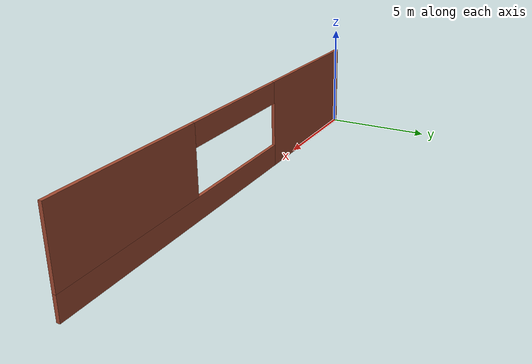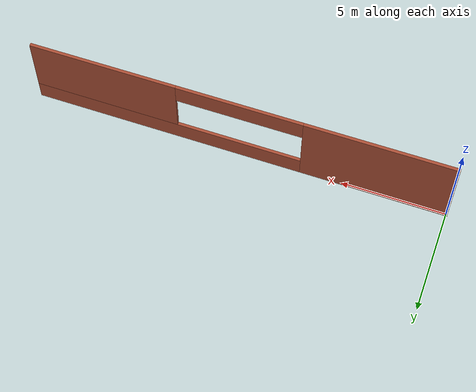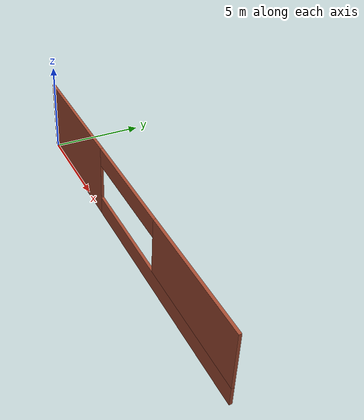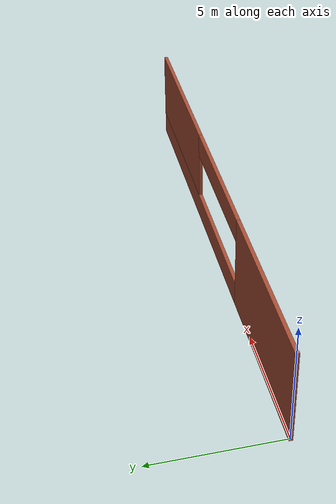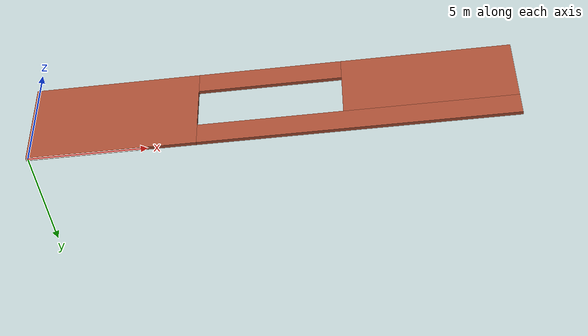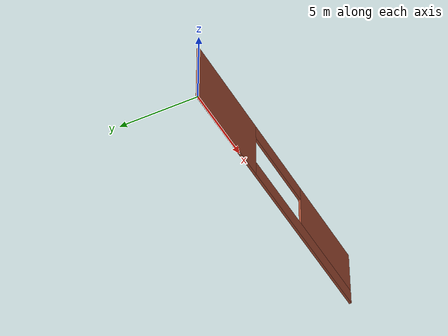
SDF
<?xml version='1.0'?>
<sdf version='1.7'>
  <model name='e_wall_2'>
    <pose>10 0 0 0 -0 0</pose>
    <link name='Wall_8'>
      <pose>-0 0 0 0 -0 0</pose>
      <visual name='Wall_8_Visual_0'>
        <pose>-6.5375 0 2 0 -0 0</pose>
        <geometry>
          <box>
            <size>7.075 0.15 4</size>
          </box>
        </geometry>
        <material>
          <script>
            <uri>model://e_wall_2/scripts</uri>
            <name>Bricks3_8</name>
          </script>
          <ambient>1 1 1 1</ambient>
        </material>
        <meta>
          <layer>0</layer>
        </meta>
      </visual>
      <collision name='Wall_8_Collision_0'>
        <geometry>
          <box>
            <size>7.075 0.15 4</size>
          </box>
        </geometry>
        <pose>-6.5375 0 2 0 -0 0</pose>
      </collision>
      <visual name='Wall_8_Visual_1'>
        <pose>3.5375 0 0.5 0 -0 0</pose>
        <geometry>
          <box>
            <size>13.075 0.15 1</size>
          </box>
        </geometry>
        <material>
          <script>
            <uri>model://e_wall_2/scripts</uri>
            <name>Bricks3_9</name>
          </script>
          <ambient>1 1 1 1</ambient>
        </material>
        <meta>
          <layer>0</layer>
        </meta>
      </visual>
      <collision name='Wall_8_Collision_1'>
        <geometry>
          <box>
            <size>13.075 0.15 1</size>
          </box>
        </geometry>
        <pose>3.5375 0 0.5 0 -0 0</pose>
      </collision>
      <visual name='Wall_8_Visual_2'>
        <pose>6.5375 0 2.5 0 -0 0</pose>
        <geometry>
          <box>
            <size>7.075 0.15 3</size>
          </box>
        </geometry>
        <material>
          <script>
            <uri>model://e_wall_2/scripts</uri>
            <name>Bricks3_10</name>
          </script>
          <ambient>1 1 1 1</ambient>
        </material>
        <meta>
          <layer>0</layer>
        </meta>
      </visual>
      <collision name='Wall_8_Collision_2'>
        <geometry>
          <box>
            <size>7.075 0.15 3</size>
          </box>
        </geometry>
        <pose>6.5375 0 2.5 0 -0 0</pose>
      </collision>
      <visual name='Wall_8_Visual_3'>
        <pose>0 0 3.5 0 -0 0</pose>
        <geometry>
          <box>
            <size>6 0.15 1</size>
          </box>
        </geometry>
        <material>
          <script>
            <uri>model://e_wall_2/scripts</uri>
            <name>Bricks3_11</name>
          </script>
          <ambient>1 1 1 1</ambient>
        </material>
        <meta>
          <layer>0</layer>
        </meta>
      </visual>
      <collision name='Wall_8_Collision_3'>
        <geometry>
          <box>
            <size>6 0.15 1</size>
          </box>
        </geometry>
        <pose>0 0 3.5 0 -0 0</pose>
      </collision>
    </link>
    <static>1</static>
  </model>
</sdf>
